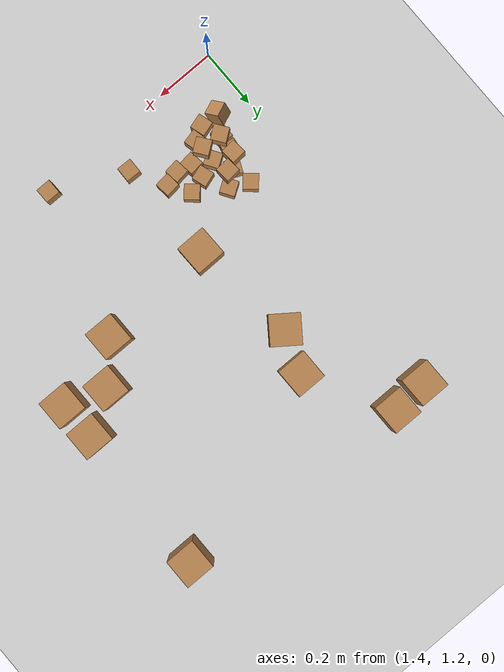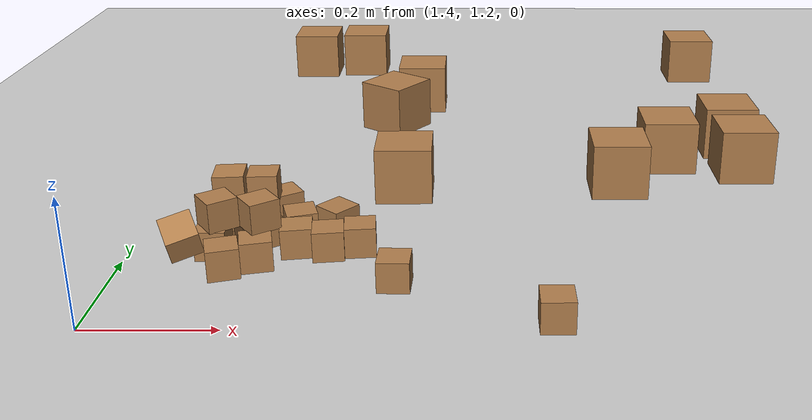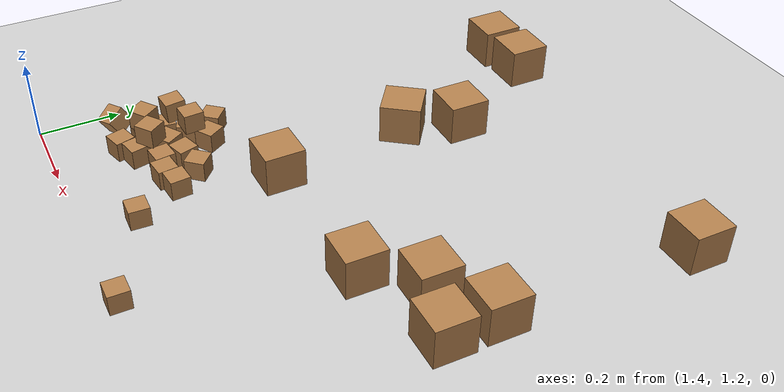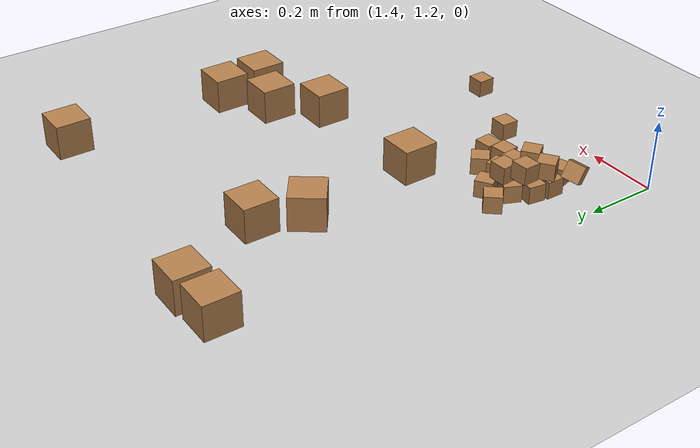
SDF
<sdf version="1.6">
 <world name="default">
  <model name="ground_plane">
   <static>1</static>
   <link name="link">
    <collision name="collision">
     <geometry><plane><normal>0 0 1</normal><size>100 100</size></plane></geometry>
     <surface>
      <contact><collide_bitmask>65535</collide_bitmask></contact>
      <friction><ode><mu>100</mu><mu2>50</mu2></ode></friction>
     </surface>
    </collision>
    <visual name="visual">
     <cast_shadows>0</cast_shadows>
     <geometry><plane><normal>0 0 1</normal><size>100 100</size></plane></geometry>
     <material>
      <script><uri>file://media/materials/scripts/gazebo.material</uri><name>Gazebo/Grey</name></script>
     </material>
    </visual>
   </link>
  </model>
  <model name="cube_0487_10p0cm">
   <link name="link">
    <pose>0 0 0.05 0 -0 0</pose>
    <inertial>
     <mass>0.5167</mass>
     <inertia>
      <ixx>0.000861167</ixx>
      <ixy>0</ixy>
      <ixz>0</ixz>
      <iyy>0.000861167</iyy>
      <iyz>0</iyz>
      <izz>0.000861167</izz>
     </inertia>
    </inertial>
    <collision name="collision">
     <geometry><box><size>0.1 0.1 0.1</size></box></geometry>
     <surface>
      <contact>
       <poissons_ratio>0.347</poissons_ratio>
       <elastic_modulus>8.8e+09</elastic_modulus>
       <ode><kp>100000</kp><kd>100</kd><max_vel>100</max_vel><min_depth>0.001</min_depth></ode>
      </contact>
      <friction>
       <torsional>
        <coefficient>1</coefficient>
        <use_patch_radius>0</use_patch_radius>
        <surface_radius>0.01</surface_radius>
       </torsional>
      </friction>
     </surface>
    </collision>
    <visual name="visual">
     <geometry><box><size>0.1 0.1 0.1</size></box></geometry>
     <material>
      <script><uri>file://media/materials/scripts/gazebo.material</uri><name>Gazebo/Wood</name></script>
     </material>
    </visual>
   </link>
   <pose>2.4439 1.8834 -0.001013 0 -0 0</pose>
  </model>
  <model name="cube_0747_10p0cm">
   <link name="link">
    <pose>0 0 0.05 0 -0 0</pose>
    <inertial>
     <mass>0.5167</mass>
     <inertia>
      <ixx>0.000861167</ixx>
      <ixy>0</ixy>
      <ixz>0</ixz>
      <iyy>0.000861167</iyy>
      <iyz>0</iyz>
      <izz>0.000861167</izz>
     </inertia>
    </inertial>
    <collision name="collision">
     <geometry><box><size>0.1 0.1 0.1</size></box></geometry>
     <surface>
      <contact>
       <poissons_ratio>0.347</poissons_ratio>
       <elastic_modulus>8.8e+09</elastic_modulus>
       <ode><kp>100000</kp><kd>100</kd><max_vel>100</max_vel><min_depth>0.001</min_depth></ode>
      </contact>
      <friction>
       <torsional>
        <coefficient>1</coefficient>
        <use_patch_radius>0</use_patch_radius>
        <surface_radius>0.01</surface_radius>
       </torsional>
      </friction>
     </surface>
    </collision>
    <visual name="visual">
     <geometry><box><size>0.1 0.1 0.1</size></box></geometry>
     <material>
      <script><uri>file://media/materials/scripts/gazebo.material</uri><name>Gazebo/Wood</name></script>
     </material>
    </visual>
   </link>
   <pose>1.67955 2.42645 -0.001013 0 -0 0</pose>
  </model>
  <model name="cube_0038_10p0cm">
   <link name="link">
    <pose>0 0 0.05 0 -0 0</pose>
    <inertial>
     <mass>0.5167</mass>
     <inertia>
      <ixx>0.000861167</ixx>
      <ixy>0</ixy>
      <ixz>0</ixz>
      <iyy>0.000861167</iyy>
      <iyz>0</iyz>
      <izz>0.000861167</izz>
     </inertia>
    </inertial>
    <collision name="collision">
     <geometry><box><size>0.1 0.1 0.1</size></box></geometry>
     <surface>
      <contact>
       <poissons_ratio>0.347</poissons_ratio>
       <elastic_modulus>8.8e+09</elastic_modulus>
       <ode><kp>100000</kp><kd>100</kd><max_vel>100</max_vel><min_depth>0.001</min_depth></ode>
      </contact>
      <friction>
       <torsional>
        <coefficient>1</coefficient>
        <use_patch_radius>0</use_patch_radius>
        <surface_radius>0.01</surface_radius>
       </torsional>
      </friction>
     </surface>
    </collision>
    <visual name="visual">
     <geometry><box><size>0.1 0.1 0.1</size></box></geometry>
     <material>
      <script><uri>file://media/materials/scripts/gazebo.material</uri><name>Gazebo/Wood</name></script>
     </material>
    </visual>
   </link>
   <pose>1.56399 2.41632 -0.001013 0 -0 0</pose>
  </model>
  <model name="cube_0555_10p0cm">
   <link name="link">
    <pose>0 0 0.05 0 -0 0</pose>
    <inertial>
     <mass>0.5167</mass>
     <inertia>
      <ixx>0.000861167</ixx>
      <ixy>0</ixy>
      <ixz>0</ixz>
      <iyy>0.000861167</iyy>
      <iyz>0</iyz>
      <izz>0.000861167</izz>
     </inertia>
    </inertial>
    <collision name="collision">
     <geometry><box><size>0.1 0.1 0.1</size></box></geometry>
     <surface>
      <contact>
       <poissons_ratio>0.347</poissons_ratio>
       <elastic_modulus>8.8e+09</elastic_modulus>
       <ode><kp>100000</kp><kd>100</kd><max_vel>100</max_vel><min_depth>0.001</min_depth></ode>
      </contact>
      <friction>
       <torsional>
        <coefficient>1</coefficient>
        <use_patch_radius>0</use_patch_radius>
        <surface_radius>0.01</surface_radius>
       </torsional>
      </friction>
     </surface>
    </collision>
    <visual name="visual">
     <geometry><box><size>0.1 0.1 0.1</size></box></geometry>
     <material>
      <script><uri>file://media/materials/scripts/gazebo.material</uri><name>Gazebo/Wood</name></script>
     </material>
    </visual>
   </link>
   <pose>2.31334 1.80392 -0.001013 0 -0 0</pose>
  </model>
  <model name="cube_0059_10p0cm">
   <link name="link">
    <pose>0 0 0.05 0 -0 0</pose>
    <inertial>
     <mass>0.5167</mass>
     <inertia>
      <ixx>0.000861167</ixx>
      <ixy>0</ixy>
      <ixz>0</ixz>
      <iyy>0.000861167</iyy>
      <iyz>0</iyz>
      <izz>0.000861167</izz>
     </inertia>
    </inertial>
    <collision name="collision">
     <geometry><box><size>0.1 0.1 0.1</size></box></geometry>
     <surface>
      <contact>
       <poissons_ratio>0.347</poissons_ratio>
       <elastic_modulus>8.8e+09</elastic_modulus>
       <ode><kp>100000</kp><kd>100</kd><max_vel>100</max_vel><min_depth>0.001</min_depth></ode>
      </contact>
      <friction>
       <torsional>
        <coefficient>1</coefficient>
        <use_patch_radius>0</use_patch_radius>
        <surface_radius>0.01</surface_radius>
       </torsional>
      </friction>
     </surface>
    </collision>
    <visual name="visual">
     <geometry><box><size>0.1 0.1 0.1</size></box></geometry>
     <material>
      <script><uri>file://media/materials/scripts/gazebo.material</uri><name>Gazebo/Wood</name></script>
     </material>
    </visual>
   </link>
   <pose>1.83166 2.15412 -0.001013 0 0 -0.000922</pose>
  </model>
  <model name="cube_0230_10p0cm">
   <link name="link">
    <pose>0 0 0.05 0 -0 0</pose>
    <inertial>
     <mass>0.5167</mass>
     <inertia>
      <ixx>0.000861167</ixx>
      <ixy>0</ixy>
      <ixz>0</ixz>
      <iyy>0.000861167</iyy>
      <iyz>0</iyz>
      <izz>0.000861167</izz>
     </inertia>
    </inertial>
    <collision name="collision">
     <geometry><box><size>0.1 0.1 0.1</size></box></geometry>
     <surface>
      <contact>
       <poissons_ratio>0.347</poissons_ratio>
       <elastic_modulus>8.8e+09</elastic_modulus>
       <ode><kp>100000</kp><kd>100</kd><max_vel>100</max_vel><min_depth>0.001</min_depth></ode>
      </contact>
      <friction>
       <torsional>
        <coefficient>1</coefficient>
        <use_patch_radius>0</use_patch_radius>
        <surface_radius>0.01</surface_radius>
       </torsional>
      </friction>
     </surface>
    </collision>
    <visual name="visual">
     <geometry><box><size>0.1 0.1 0.1</size></box></geometry>
     <material>
      <script><uri>file://media/materials/scripts/gazebo.material</uri><name>Gazebo/Wood</name></script>
     </material>
    </visual>
   </link>
   <pose>2.44741 1.75877 -0.001013 0 -0 0</pose>
  </model>
  <model name="cube_0076_10p0cm">
   <link name="link">
    <pose>0 0 0.05 0 -0 0</pose>
    <inertial>
     <mass>0.5167</mass>
     <inertia>
      <ixx>0.000861167</ixx>
      <ixy>0</ixy>
      <ixz>0</ixz>
      <iyy>0.000861167</iyy>
      <iyz>0</iyz>
      <izz>0.000861167</izz>
     </inertia>
    </inertial>
    <collision name="collision">
     <geometry><box><size>0.1 0.1 0.1</size></box></geometry>
     <surface>
      <contact>
       <poissons_ratio>0.347</poissons_ratio>
       <elastic_modulus>8.8e+09</elastic_modulus>
       <ode><kp>100000</kp><kd>100</kd><max_vel>100</max_vel><min_depth>0.001</min_depth></ode>
      </contact>
      <friction>
       <torsional>
        <coefficient>1</coefficient>
        <use_patch_radius>0</use_patch_radius>
        <surface_radius>0.01</surface_radius>
       </torsional>
      </friction>
     </surface>
    </collision>
    <visual name="visual">
     <geometry><box><size>0.1 0.1 0.1</size></box></geometry>
     <material>
      <script><uri>file://media/materials/scripts/gazebo.material</uri><name>Gazebo/Wood</name></script>
     </material>
    </visual>
   </link>
   <pose>2.20626 1.68875 -0.001013 0 -0 0</pose>
  </model>
  <model name="cube_0741_10p0cm">
   <link name="link">
    <pose>0 0 0.05 0 -0 0</pose>
    <inertial>
     <mass>0.5167</mass>
     <inertia>
      <ixx>0.000861167</ixx>
      <ixy>0</ixy>
      <ixz>0</ixz>
      <iyy>0.000861167</iyy>
      <iyz>0</iyz>
      <izz>0.000861167</izz>
     </inertia>
    </inertial>
    <collision name="collision">
     <geometry><box><size>0.1 0.1 0.1</size></box></geometry>
     <surface>
      <contact>
       <poissons_ratio>0.347</poissons_ratio>
       <elastic_modulus>8.8e+09</elastic_modulus>
       <ode><kp>100000</kp><kd>100</kd><max_vel>100</max_vel><min_depth>0.001</min_depth></ode>
      </contact>
      <friction>
       <torsional>
        <coefficient>1</coefficient>
        <use_patch_radius>0</use_patch_radius>
        <surface_radius>0.01</surface_radius>
       </torsional>
      </friction>
     </surface>
    </collision>
    <visual name="visual">
     <geometry><box><size>0.1 0.1 0.1</size></box></geometry>
     <material>
      <script><uri>file://media/materials/scripts/gazebo.material</uri><name>Gazebo/Wood</name></script>
     </material>
    </visual>
   </link>
   <pose>2.4582 2.37258 -0.001013 0 -0 0</pose>
  </model>
  <model name="cube_0599_10p0cm">
   <link name="link">
    <pose>0 0 0.05 0 -0 0</pose>
    <inertial>
     <mass>0.5167</mass>
     <inertia>
      <ixx>0.000861167</ixx>
      <ixy>0</ixy>
      <ixz>0</ixz>
      <iyy>0.000861167</iyy>
      <iyz>0</iyz>
      <izz>0.000861167</izz>
     </inertia>
    </inertial>
    <collision name="collision">
     <geometry><box><size>0.1 0.1 0.1</size></box></geometry>
     <surface>
      <contact>
       <poissons_ratio>0.347</poissons_ratio>
       <elastic_modulus>8.8e+09</elastic_modulus>
       <ode><kp>100000</kp><kd>100</kd><max_vel>100</max_vel><min_depth>0.001</min_depth></ode>
      </contact>
      <friction>
       <torsional>
        <coefficient>1</coefficient>
        <use_patch_radius>0</use_patch_radius>
        <surface_radius>0.01</surface_radius>
       </torsional>
      </friction>
     </surface>
    </collision>
    <visual name="visual">
     <geometry><box><size>0.1 0.1 0.1</size></box></geometry>
     <material>
      <script><uri>file://media/materials/scripts/gazebo.material</uri><name>Gazebo/Wood</name></script>
     </material>
    </visual>
   </link>
   <pose>1.82292 1.66964 -0.001013 0 -0 0.014042</pose>
  </model>
  <model name="cube_0356_10p0cm">
   <link name="link">
    <pose>0 0 0.05 0 -0 0</pose>
    <inertial>
     <mass>0.5167</mass>
     <inertia>
      <ixx>0.000861167</ixx>
      <ixy>0</ixy>
      <ixz>0</ixz>
      <iyy>0.000861167</iyy>
      <iyz>0</iyz>
      <izz>0.000861167</izz>
     </inertia>
    </inertial>
    <collision name="collision">
     <geometry><box><size>0.1 0.1 0.1</size></box></geometry>
     <surface>
      <contact>
       <poissons_ratio>0.347</poissons_ratio>
       <elastic_modulus>8.8e+09</elastic_modulus>
       <ode><kp>100000</kp><kd>100</kd><max_vel>100</max_vel><min_depth>0.001</min_depth></ode>
      </contact>
      <friction>
       <torsional>
        <coefficient>1</coefficient>
        <use_patch_radius>0</use_patch_radius>
        <surface_radius>0.01</surface_radius>
       </torsional>
      </friction>
     </surface>
    </collision>
    <visual name="visual">
     <geometry><box><size>0.1 0.1 0.1</size></box></geometry>
     <material>
      <script><uri>file://media/materials/scripts/gazebo.material</uri><name>Gazebo/Wood</name></script>
     </material>
    </visual>
   </link>
   <pose>1.74197 2.04983 0.048987 1.5708 -0 0.936336</pose>
  </model>
  <model name="cube_0233_05p0cm">
   <link name="link">
    <pose>0 0 0.025 0 -0 0</pose>
    <inertial>
     <mass>0.0565</mass>
     <inertia>
      <ixx>2.35417e-05</ixx>
      <ixy>0</ixy>
      <ixz>0</ixz>
      <iyy>2.35417e-05</iyy>
      <iyz>0</iyz>
      <izz>2.35417e-05</izz>
     </inertia>
    </inertial>
    <collision name="collision">
     <geometry><box><size>0.05 0.05 0.05</size></box></geometry>
     <surface>
      <contact>
       <poissons_ratio>0.347</poissons_ratio>
       <elastic_modulus>8.8e+09</elastic_modulus>
       <ode><kp>100000</kp><kd>1</kd><max_vel>1</max_vel><min_depth>0.001</min_depth></ode>
      </contact>
      <friction>
       <torsional>
        <coefficient>1</coefficient>
        <use_patch_radius>0</use_patch_radius>
        <surface_radius>0.05</surface_radius>
       </torsional>
      </friction>
     </surface>
    </collision>
    <visual name="visual">
     <geometry><box><size>0.05 0.05 0.05</size></box></geometry>
     <material>
      <script><uri>file://media/materials/scripts/gazebo.material</uri><name>Gazebo/Wood</name></script>
     </material>
    </visual>
   </link>
   <pose>1.53731 1.42735 -0.001003 -5e-05 4.8e-05 -0.014811</pose>
  </model>
  <model name="cube_0399_05p0cm">
   <link name="link">
    <pose>0 0 0.025 0 -0 0</pose>
    <inertial>
     <mass>0.0565</mass>
     <inertia>
      <ixx>2.35417e-05</ixx>
      <ixy>0</ixy>
      <ixz>0</ixz>
      <iyy>2.35417e-05</iyy>
      <iyz>0</iyz>
      <izz>2.35417e-05</izz>
     </inertia>
    </inertial>
    <collision name="collision">
     <geometry><box><size>0.05 0.05 0.05</size></box></geometry>
     <surface>
      <contact>
       <poissons_ratio>0.347</poissons_ratio>
       <elastic_modulus>8.8e+09</elastic_modulus>
       <ode><kp>100000</kp><kd>1</kd><max_vel>1</max_vel><min_depth>0.001</min_depth></ode>
      </contact>
      <friction>
       <torsional>
        <coefficient>1</coefficient>
        <use_patch_radius>0</use_patch_radius>
        <surface_radius>0.05</surface_radius>
       </torsional>
      </friction>
     </surface>
    </collision>
    <visual name="visual">
     <geometry><box><size>0.05 0.05 0.05</size></box></geometry>
     <material>
      <script><uri>file://media/materials/scripts/gazebo.material</uri><name>Gazebo/Wood</name></script>
     </material>
    </visual>
   </link>
   <pose>1.74273 1.43775 0.023999 2.7967 1.57079 2.89628</pose>
  </model>
  <model name="cube_0829_05p0cm">
   <link name="link">
    <pose>0 0 0.025 0 -0 0</pose>
    <inertial>
     <mass>0.0565</mass>
     <inertia>
      <ixx>2.35417e-05</ixx>
      <ixy>0</ixy>
      <ixz>0</ixz>
      <iyy>2.35417e-05</iyy>
      <iyz>0</iyz>
      <izz>2.35417e-05</izz>
     </inertia>
    </inertial>
    <collision name="collision">
     <geometry><box><size>0.05 0.05 0.05</size></box></geometry>
     <surface>
      <contact>
       <poissons_ratio>0.347</poissons_ratio>
       <elastic_modulus>8.8e+09</elastic_modulus>
       <ode><kp>100000</kp><kd>1</kd><max_vel>1</max_vel><min_depth>0.001</min_depth></ode>
      </contact>
      <friction>
       <torsional>
        <coefficient>1</coefficient>
        <use_patch_radius>0</use_patch_radius>
        <surface_radius>0.05</surface_radius>
       </torsional>
      </friction>
     </surface>
    </collision>
    <visual name="visual">
     <geometry><box><size>0.05 0.05 0.05</size></box></geometry>
     <material>
      <script><uri>file://media/materials/scripts/gazebo.material</uri><name>Gazebo/Wood</name></script>
     </material>
    </visual>
   </link>
   <pose>1.53986 1.45746 0.023996 -1.57079 -9e-06 -0.148982</pose>
  </model>
  <model name="cube_0288_05p0cm">
   <link name="link">
    <pose>0 0 0.025 0 -0 0</pose>
    <inertial>
     <mass>0.0565</mass>
     <inertia>
      <ixx>2.35417e-05</ixx>
      <ixy>0</ixy>
      <ixz>0</ixz>
      <iyy>2.35417e-05</iyy>
      <iyz>0</iyz>
      <izz>2.35417e-05</izz>
     </inertia>
    </inertial>
    <collision name="collision">
     <geometry><box><size>0.05 0.05 0.05</size></box></geometry>
     <surface>
      <contact>
       <poissons_ratio>0.347</poissons_ratio>
       <elastic_modulus>8.8e+09</elastic_modulus>
       <ode><kp>100000</kp><kd>1</kd><max_vel>1</max_vel><min_depth>0.001</min_depth></ode>
      </contact>
      <friction>
       <torsional>
        <coefficient>1</coefficient>
        <use_patch_radius>0</use_patch_radius>
        <surface_radius>0.05</surface_radius>
       </torsional>
      </friction>
     </surface>
    </collision>
    <visual name="visual">
     <geometry><box><size>0.05 0.05 0.05</size></box></geometry>
     <material>
      <script><uri>file://media/materials/scripts/gazebo.material</uri><name>Gazebo/Wood</name></script>
     </material>
    </visual>
   </link>
   <pose>1.83016 1.32753 0.048999 3.14159 0 3.11461</pose>
  </model>
  <model name="cube_0947_05p0cm">
   <link name="link">
    <pose>0 0 0.025 0 -0 0</pose>
    <inertial>
     <mass>0.0565</mass>
     <inertia>
      <ixx>2.35417e-05</ixx>
      <ixy>0</ixy>
      <ixz>0</ixz>
      <iyy>2.35417e-05</iyy>
      <iyz>0</iyz>
      <izz>2.35417e-05</izz>
     </inertia>
    </inertial>
    <collision name="collision">
     <geometry><box><size>0.05 0.05 0.05</size></box></geometry>
     <surface>
      <contact>
       <poissons_ratio>0.347</poissons_ratio>
       <elastic_modulus>8.8e+09</elastic_modulus>
       <ode><kp>100000</kp><kd>1</kd><max_vel>1</max_vel><min_depth>0.001</min_depth></ode>
      </contact>
      <friction>
       <torsional>
        <coefficient>1</coefficient>
        <use_patch_radius>0</use_patch_radius>
        <surface_radius>0.05</surface_radius>
       </torsional>
      </friction>
     </surface>
    </collision>
    <visual name="visual">
     <geometry><box><size>0.05 0.05 0.05</size></box></geometry>
     <material>
      <script><uri>file://media/materials/scripts/gazebo.material</uri><name>Gazebo/Wood</name></script>
     </material>
    </visual>
   </link>
   <pose>1.60421 1.55578 0.023998 2.43341 1.57077 3.00236</pose>
  </model>
  <model name="cube_0141_05p0cm">
   <link name="link">
    <pose>0 0 0.025 0 -0 0</pose>
    <inertial>
     <mass>0.0565</mass>
     <inertia>
      <ixx>2.35417e-05</ixx>
      <ixy>0</ixy>
      <ixz>0</ixz>
      <iyy>2.35417e-05</iyy>
      <iyz>0</iyz>
      <izz>2.35417e-05</izz>
     </inertia>
    </inertial>
    <collision name="collision">
     <geometry><box><size>0.05 0.05 0.05</size></box></geometry>
     <surface>
      <contact>
       <poissons_ratio>0.347</poissons_ratio>
       <elastic_modulus>8.8e+09</elastic_modulus>
       <ode><kp>100000</kp><kd>1</kd><max_vel>1</max_vel><min_depth>0.001</min_depth></ode>
      </contact>
      <friction>
       <torsional>
        <coefficient>1</coefficient>
        <use_patch_radius>0</use_patch_radius>
        <surface_radius>0.05</surface_radius>
       </torsional>
      </friction>
     </surface>
    </collision>
    <visual name="visual">
     <geometry><box><size>0.05 0.05 0.05</size></box></geometry>
     <material>
      <script><uri>file://media/materials/scripts/gazebo.material</uri><name>Gazebo/Wood</name></script>
     </material>
    </visual>
   </link>
   <pose>1.54601 1.58059 0.023998 -1.5708 -3.1e-05 -0.71114</pose>
  </model>
  <model name="cube_0855_05p0cm">
   <link name="link">
    <pose>0 0 0.025 0 -0 0</pose>
    <inertial>
     <mass>0.0565</mass>
     <inertia>
      <ixx>2.35417e-05</ixx>
      <ixy>0</ixy>
      <ixz>0</ixz>
      <iyy>2.35417e-05</iyy>
      <iyz>0</iyz>
      <izz>2.35417e-05</izz>
     </inertia>
    </inertial>
    <collision name="collision">
     <geometry><box><size>0.05 0.05 0.05</size></box></geometry>
     <surface>
      <contact>
       <poissons_ratio>0.347</poissons_ratio>
       <elastic_modulus>8.8e+09</elastic_modulus>
       <ode><kp>100000</kp><kd>1</kd><max_vel>1</max_vel><min_depth>0.001</min_depth></ode>
      </contact>
      <friction>
       <torsional>
        <coefficient>1</coefficient>
        <use_patch_radius>0</use_patch_radius>
        <surface_radius>0.05</surface_radius>
       </torsional>
      </friction>
     </surface>
    </collision>
    <visual name="visual">
     <geometry><box><size>0.05 0.05 0.05</size></box></geometry>
     <material>
      <script><uri>file://media/materials/scripts/gazebo.material</uri><name>Gazebo/Wood</name></script>
     </material>
    </visual>
   </link>
   <pose>1.5266 1.38137 0.063924 -1.9692 1.02043 1.63691</pose>
  </model>
  <model name="cube_0270_05p0cm">
   <link name="link">
    <pose>0 0 0.025 0 -0 0</pose>
    <inertial>
     <mass>0.0565</mass>
     <inertia>
      <ixx>2.35417e-05</ixx>
      <ixy>0</ixy>
      <ixz>0</ixz>
      <iyy>2.35417e-05</iyy>
      <iyz>0</iyz>
      <izz>2.35417e-05</izz>
     </inertia>
    </inertial>
    <collision name="collision">
     <geometry><box><size>0.05 0.05 0.05</size></box></geometry>
     <surface>
      <contact>
       <poissons_ratio>0.347</poissons_ratio>
       <elastic_modulus>8.8e+09</elastic_modulus>
       <ode><kp>100000</kp><kd>1</kd><max_vel>1</max_vel><min_depth>0.001</min_depth></ode>
      </contact>
      <friction>
       <torsional>
        <coefficient>1</coefficient>
        <use_patch_radius>0</use_patch_radius>
        <surface_radius>0.05</surface_radius>
       </torsional>
      </friction>
     </surface>
    </collision>
    <visual name="visual">
     <geometry><box><size>0.05 0.05 0.05</size></box></geometry>
     <material>
      <script><uri>file://media/materials/scripts/gazebo.material</uri><name>Gazebo/Wood</name></script>
     </material>
    </visual>
   </link>
   <pose>1.61181 1.39052 0.048998 -3.14158 1.1e-05 1.8006</pose>
  </model>
  <model name="cube_0228_05p0cm">
   <link name="link">
    <pose>0 0 0.025 0 -0 0</pose>
    <inertial>
     <mass>0.0565</mass>
     <inertia>
      <ixx>2.35417e-05</ixx>
      <ixy>0</ixy>
      <ixz>0</ixz>
      <iyy>2.35417e-05</iyy>
      <iyz>0</iyz>
      <izz>2.35417e-05</izz>
     </inertia>
    </inertial>
    <collision name="collision">
     <geometry><box><size>0.05 0.05 0.05</size></box></geometry>
     <surface>
      <contact>
       <poissons_ratio>0.347</poissons_ratio>
       <elastic_modulus>8.8e+09</elastic_modulus>
       <ode><kp>100000</kp><kd>1</kd><max_vel>1</max_vel><min_depth>0.001</min_depth></ode>
      </contact>
      <friction>
       <torsional>
        <coefficient>1</coefficient>
        <use_patch_radius>0</use_patch_radius>
        <surface_radius>0.05</surface_radius>
       </torsional>
      </friction>
     </surface>
    </collision>
    <visual name="visual">
     <geometry><box><size>0.05 0.05 0.05</size></box></geometry>
     <material>
      <script><uri>file://media/materials/scripts/gazebo.material</uri><name>Gazebo/Wood</name></script>
     </material>
    </visual>
   </link>
   <pose>1.7406 1.5251 0.023999 -0.844253 1.57079 3.14159</pose>
  </model>
  <model name="cube_0729_05p0cm">
   <link name="link">
    <pose>0 0 0.025 0 -0 0</pose>
    <inertial>
     <mass>0.0565</mass>
     <inertia>
      <ixx>2.35417e-05</ixx>
      <ixy>0</ixy>
      <ixz>0</ixz>
      <iyy>2.35417e-05</iyy>
      <iyz>0</iyz>
      <izz>2.35417e-05</izz>
     </inertia>
    </inertial>
    <collision name="collision">
     <geometry><box><size>0.05 0.05 0.05</size></box></geometry>
     <surface>
      <contact>
       <poissons_ratio>0.347</poissons_ratio>
       <elastic_modulus>8.8e+09</elastic_modulus>
       <ode><kp>100000</kp><kd>1</kd><max_vel>1</max_vel><min_depth>0.001</min_depth></ode>
      </contact>
      <friction>
       <torsional>
        <coefficient>1</coefficient>
        <use_patch_radius>0</use_patch_radius>
        <surface_radius>0.05</surface_radius>
       </torsional>
      </friction>
     </surface>
    </collision>
    <visual name="visual">
     <geometry><box><size>0.05 0.05 0.05</size></box></geometry>
     <material>
      <script><uri>file://media/materials/scripts/gazebo.material</uri><name>Gazebo/Wood</name></script>
     </material>
    </visual>
   </link>
   <pose>1.71839 1.42643 -0.001002 7e-06 -1e-06 0.124188</pose>
  </model>
  <model name="cube_0009_05p0cm">
   <link name="link">
    <pose>0 0 0.025 0 -0 0</pose>
    <inertial>
     <mass>0.0565</mass>
     <inertia>
      <ixx>2.35417e-05</ixx>
      <ixy>0</ixy>
      <ixz>0</ixz>
      <iyy>2.35417e-05</iyy>
      <iyz>0</iyz>
      <izz>2.35417e-05</izz>
     </inertia>
    </inertial>
    <collision name="collision">
     <geometry><box><size>0.05 0.05 0.05</size></box></geometry>
     <surface>
      <contact>
       <poissons_ratio>0.347</poissons_ratio>
       <elastic_modulus>8.8e+09</elastic_modulus>
       <ode><kp>100000</kp><kd>1</kd><max_vel>1</max_vel><min_depth>0.001</min_depth></ode>
      </contact>
      <friction>
       <torsional>
        <coefficient>1</coefficient>
        <use_patch_radius>0</use_patch_radius>
        <surface_radius>0.05</surface_radius>
       </torsional>
      </friction>
     </surface>
    </collision>
    <visual name="visual">
     <geometry><box><size>0.05 0.05 0.05</size></box></geometry>
     <material>
      <script><uri>file://media/materials/scripts/gazebo.material</uri><name>Gazebo/Wood</name></script>
     </material>
    </visual>
   </link>
   <pose>1.5655 1.36507 -0.001001 -0 1e-06 1.85722</pose>
  </model>
  <model name="cube_0803_05p0cm">
   <link name="link">
    <pose>0 0 0.025 0 -0 0</pose>
    <inertial>
     <mass>0.0565</mass>
     <inertia>
      <ixx>2.35417e-05</ixx>
      <ixy>0</ixy>
      <ixz>0</ixz>
      <iyy>2.35417e-05</iyy>
      <iyz>0</iyz>
      <izz>2.35417e-05</izz>
     </inertia>
    </inertial>
    <collision name="collision">
     <geometry><box><size>0.05 0.05 0.05</size></box></geometry>
     <surface>
      <contact>
       <poissons_ratio>0.347</poissons_ratio>
       <elastic_modulus>8.8e+09</elastic_modulus>
       <ode><kp>100000</kp><kd>1</kd><max_vel>1</max_vel><min_depth>0.001</min_depth></ode>
      </contact>
      <friction>
       <torsional>
        <coefficient>1</coefficient>
        <use_patch_radius>0</use_patch_radius>
        <surface_radius>0.05</surface_radius>
       </torsional>
      </friction>
     </surface>
    </collision>
    <visual name="visual">
     <geometry><box><size>0.05 0.05 0.05</size></box></geometry>
     <material>
      <script><uri>file://media/materials/scripts/gazebo.material</uri><name>Gazebo/Wood</name></script>
     </material>
    </visual>
   </link>
   <pose>1.67278 1.46657 0.023999 1.5708 0 -2.8369</pose>
  </model>
  <model name="cube_0709_05p0cm">
   <link name="link">
    <pose>0 0 0.025 0 -0 0</pose>
    <inertial>
     <mass>0.0565</mass>
     <inertia>
      <ixx>2.35417e-05</ixx>
      <ixy>0</ixy>
      <ixz>0</ixz>
      <iyy>2.35417e-05</iyy>
      <iyz>0</iyz>
      <izz>2.35417e-05</izz>
     </inertia>
    </inertial>
    <collision name="collision">
     <geometry><box><size>0.05 0.05 0.05</size></box></geometry>
     <surface>
      <contact>
       <poissons_ratio>0.347</poissons_ratio>
       <elastic_modulus>8.8e+09</elastic_modulus>
       <ode><kp>100000</kp><kd>1</kd><max_vel>1</max_vel><min_depth>0.001</min_depth></ode>
      </contact>
      <friction>
       <torsional>
        <coefficient>1</coefficient>
        <use_patch_radius>0</use_patch_radius>
        <surface_radius>0.05</surface_radius>
       </torsional>
      </friction>
     </surface>
    </collision>
    <visual name="visual">
     <geometry><box><size>0.05 0.05 0.05</size></box></geometry>
     <material>
      <script><uri>file://media/materials/scripts/gazebo.material</uri><name>Gazebo/Wood</name></script>
     </material>
    </visual>
   </link>
   <pose>1.60696 1.46994 -0.001002 -1.4e-05 1.1e-05 -2.57031</pose>
  </model>
  <model name="cube_0289_05p0cm">
   <link name="link">
    <pose>0 0 0.025 0 -0 0</pose>
    <inertial>
     <mass>0.0565</mass>
     <inertia>
      <ixx>2.35417e-05</ixx>
      <ixy>0</ixy>
      <ixz>0</ixz>
      <iyy>2.35417e-05</iyy>
      <iyz>0</iyz>
      <izz>2.35417e-05</izz>
     </inertia>
    </inertial>
    <collision name="collision">
     <geometry><box><size>0.05 0.05 0.05</size></box></geometry>
     <surface>
      <contact>
       <poissons_ratio>0.347</poissons_ratio>
       <elastic_modulus>8.8e+09</elastic_modulus>
       <ode><kp>100000</kp><kd>1</kd><max_vel>1</max_vel><min_depth>0.001</min_depth></ode>
      </contact>
      <friction>
       <torsional>
        <coefficient>1</coefficient>
        <use_patch_radius>0</use_patch_radius>
        <surface_radius>0.05</surface_radius>
       </torsional>
      </friction>
     </surface>
    </collision>
    <visual name="visual">
     <geometry><box><size>0.05 0.05 0.05</size></box></geometry>
     <material>
      <script><uri>file://media/materials/scripts/gazebo.material</uri><name>Gazebo/Wood</name></script>
     </material>
    </visual>
   </link>
   <pose>2.06436 1.21564 0.048999 3.14159 -0 1.57524</pose>
  </model>
  <model name="cube_0922_05p0cm">
   <link name="link">
    <pose>0 0 0.025 0 -0 0</pose>
    <inertial>
     <mass>0.0565</mass>
     <inertia>
      <ixx>2.35417e-05</ixx>
      <ixy>0</ixy>
      <ixz>0</ixz>
      <iyy>2.35417e-05</iyy>
      <iyz>0</iyz>
      <izz>2.35417e-05</izz>
     </inertia>
    </inertial>
    <collision name="collision">
     <geometry><box><size>0.05 0.05 0.05</size></box></geometry>
     <surface>
      <contact>
       <poissons_ratio>0.347</poissons_ratio>
       <elastic_modulus>8.8e+09</elastic_modulus>
       <ode><kp>100000</kp><kd>1</kd><max_vel>1</max_vel><min_depth>0.001</min_depth></ode>
      </contact>
      <friction>
       <torsional>
        <coefficient>1</coefficient>
        <use_patch_radius>0</use_patch_radius>
        <surface_radius>0.05</surface_radius>
       </torsional>
      </friction>
     </surface>
    </collision>
    <visual name="visual">
     <geometry><box><size>0.05 0.05 0.05</size></box></geometry>
     <material>
      <script><uri>file://media/materials/scripts/gazebo.material</uri><name>Gazebo/Wood</name></script>
     </material>
    </visual>
   </link>
   <pose>1.66436 1.46072 0.024258 -1.56981 -1.56029 -3.01616</pose>
  </model>
  <model name="cube_0089_05p0cm">
   <link name="link">
    <pose>0 0 0.025 0 -0 0</pose>
    <inertial>
     <mass>0.0565</mass>
     <inertia>
      <ixx>2.35417e-05</ixx>
      <ixy>0</ixy>
      <ixz>0</ixz>
      <iyy>2.35417e-05</iyy>
      <iyz>0</iyz>
      <izz>2.35417e-05</izz>
     </inertia>
    </inertial>
    <collision name="collision">
     <geometry><box><size>0.05 0.05 0.05</size></box></geometry>
     <surface>
      <contact>
       <poissons_ratio>0.347</poissons_ratio>
       <elastic_modulus>8.8e+09</elastic_modulus>
       <ode><kp>100000</kp><kd>1</kd><max_vel>1</max_vel><min_depth>0.001</min_depth></ode>
      </contact>
      <friction>
       <torsional>
        <coefficient>1</coefficient>
        <use_patch_radius>0</use_patch_radius>
        <surface_radius>0.05</surface_radius>
       </torsional>
      </friction>
     </surface>
    </collision>
    <visual name="visual">
     <geometry><box><size>0.05 0.05 0.05</size></box></geometry>
     <material>
      <script><uri>file://media/materials/scripts/gazebo.material</uri><name>Gazebo/Wood</name></script>
     </material>
    </visual>
   </link>
   <pose>1.56557 1.50726 0.023996 -1.57076 3.4e-05 -0.410974</pose>
  </model>
  <model name="cube_0585_05p0cm">
   <link name="link">
    <pose>0 0 0.025 0 -0 0</pose>
    <inertial>
     <mass>0.0565</mass>
     <inertia>
      <ixx>2.35417e-05</ixx>
      <ixy>0</ixy>
      <ixz>0</ixz>
      <iyy>2.35417e-05</iyy>
      <iyz>0</iyz>
      <izz>2.35417e-05</izz>
     </inertia>
    </inertial>
    <collision name="collision">
     <geometry><box><size>0.05 0.05 0.05</size></box></geometry>
     <surface>
      <contact>
       <poissons_ratio>0.347</poissons_ratio>
       <elastic_modulus>8.8e+09</elastic_modulus>
       <ode><kp>100000</kp><kd>1</kd><max_vel>1</max_vel><min_depth>0.001</min_depth></ode>
      </contact>
      <friction>
       <torsional>
        <coefficient>1</coefficient>
        <use_patch_radius>0</use_patch_radius>
        <surface_radius>0.05</surface_radius>
       </torsional>
      </friction>
     </surface>
    </collision>
    <visual name="visual">
     <geometry><box><size>0.05 0.05 0.05</size></box></geometry>
     <material>
      <script><uri>file://media/materials/scripts/gazebo.material</uri><name>Gazebo/Wood</name></script>
     </material>
    </visual>
   </link>
   <pose>1.54602 1.43306 0.047996 -3.2e-05 4e-06 -0.941298</pose>
  </model>
  <model name="cube_0969_05p0cm">
   <link name="link">
    <pose>0 0 0.025 0 -0 0</pose>
    <inertial>
     <mass>0.0565</mass>
     <inertia>
      <ixx>2.35417e-05</ixx>
      <ixy>0</ixy>
      <ixz>0</ixz>
      <iyy>2.35417e-05</iyy>
      <iyz>0</iyz>
      <izz>2.35417e-05</izz>
     </inertia>
    </inertial>
    <collision name="collision">
     <geometry><box><size>0.05 0.05 0.05</size></box></geometry>
     <surface>
      <contact>
       <poissons_ratio>0.347</poissons_ratio>
       <elastic_modulus>8.8e+09</elastic_modulus>
       <ode><kp>100000</kp><kd>1</kd><max_vel>1</max_vel><min_depth>0.001</min_depth></ode>
      </contact>
      <friction>
       <torsional>
        <coefficient>1</coefficient>
        <use_patch_radius>0</use_patch_radius>
        <surface_radius>0.05</surface_radius>
       </torsional>
      </friction>
     </surface>
    </collision>
    <visual name="visual">
     <geometry><box><size>0.05 0.05 0.05</size></box></geometry>
     <material>
      <script><uri>file://media/materials/scripts/gazebo.material</uri><name>Gazebo/Wood</name></script>
     </material>
    </visual>
   </link>
   <pose>1.61224 1.42816 0.048008 -0.000373 -0.000475 0.632491</pose>
  </model>
  <model name="cube_0881_05p0cm">
   <link name="link">
    <pose>0 0 0.025 0 -0 0</pose>
    <inertial>
     <mass>0.0565</mass>
     <inertia>
      <ixx>2.35417e-05</ixx>
      <ixy>0</ixy>
      <ixz>0</ixz>
      <iyy>2.35417e-05</iyy>
      <iyz>0</iyz>
      <izz>2.35417e-05</izz>
     </inertia>
    </inertial>
    <collision name="collision">
     <geometry><box><size>0.05 0.05 0.05</size></box></geometry>
     <surface>
      <contact>
       <poissons_ratio>0.347</poissons_ratio>
       <elastic_modulus>8.8e+09</elastic_modulus>
       <ode><kp>100000</kp><kd>1</kd><max_vel>1</max_vel><min_depth>0.001</min_depth></ode>
      </contact>
      <friction>
       <torsional>
        <coefficient>1</coefficient>
        <use_patch_radius>0</use_patch_radius>
        <surface_radius>0.05</surface_radius>
       </torsional>
      </friction>
     </surface>
    </collision>
    <visual name="visual">
     <geometry><box><size>0.05 0.05 0.05</size></box></geometry>
     <material>
      <script><uri>file://media/materials/scripts/gazebo.material</uri><name>Gazebo/Wood</name></script>
     </material>
    </visual>
   </link>
   <pose>1.55216 1.50396 0.111021 3.13313 -0.050261 1.64682</pose>
  </model>
  <model name="cube_0189_05p0cm">
   <link name="link">
    <pose>0 0 0.025 0 -0 0</pose>
    <inertial>
     <mass>0.0565</mass>
     <inertia>
      <ixx>2.35417e-05</ixx>
      <ixy>0</ixy>
      <ixz>0</ixz>
      <iyy>2.35417e-05</iyy>
      <iyz>0</iyz>
      <izz>2.35417e-05</izz>
     </inertia>
    </inertial>
    <collision name="collision">
     <geometry><box><size>0.05 0.05 0.05</size></box></geometry>
     <surface>
      <contact>
       <poissons_ratio>0.347</poissons_ratio>
       <elastic_modulus>8.8e+09</elastic_modulus>
       <ode><kp>100000</kp><kd>1</kd><max_vel>1</max_vel><min_depth>0.001</min_depth></ode>
      </contact>
      <friction>
       <torsional>
        <coefficient>1</coefficient>
        <use_patch_radius>0</use_patch_radius>
        <surface_radius>0.05</surface_radius>
       </torsional>
      </friction>
     </surface>
    </collision>
    <visual name="visual">
     <geometry><box><size>0.05 0.05 0.05</size></box></geometry>
     <material>
      <script><uri>file://media/materials/scripts/gazebo.material</uri><name>Gazebo/Wood</name></script>
     </material>
    </visual>
   </link>
   <pose>1.59968 1.5341 0.047996 6.1e-05 1e-06 0.065768</pose>
  </model>
 </world>
</sdf>
